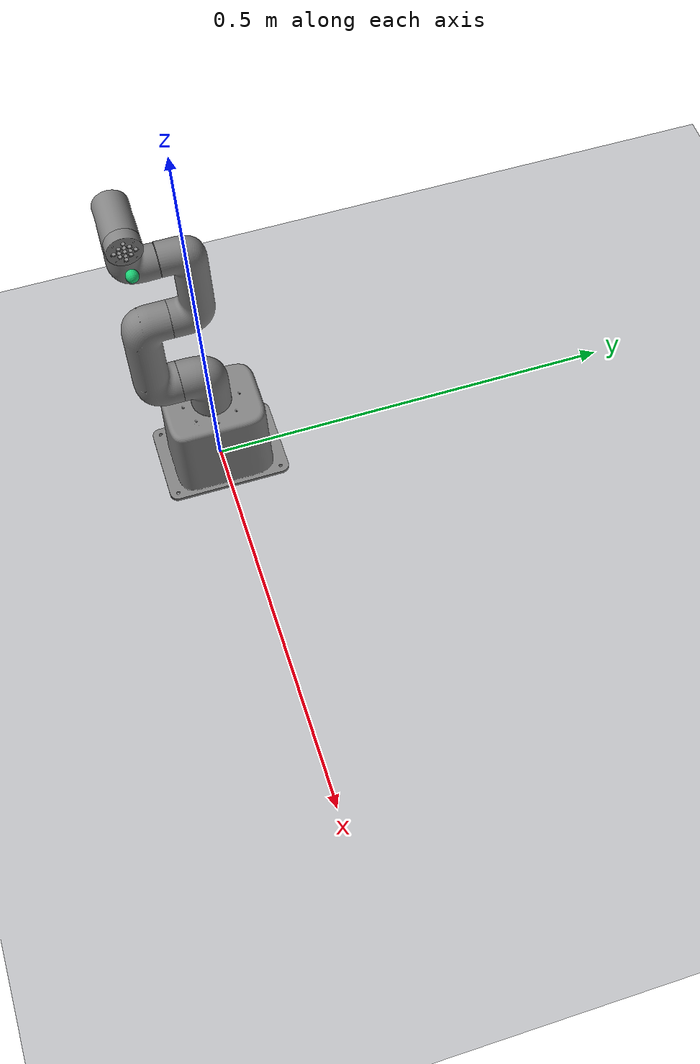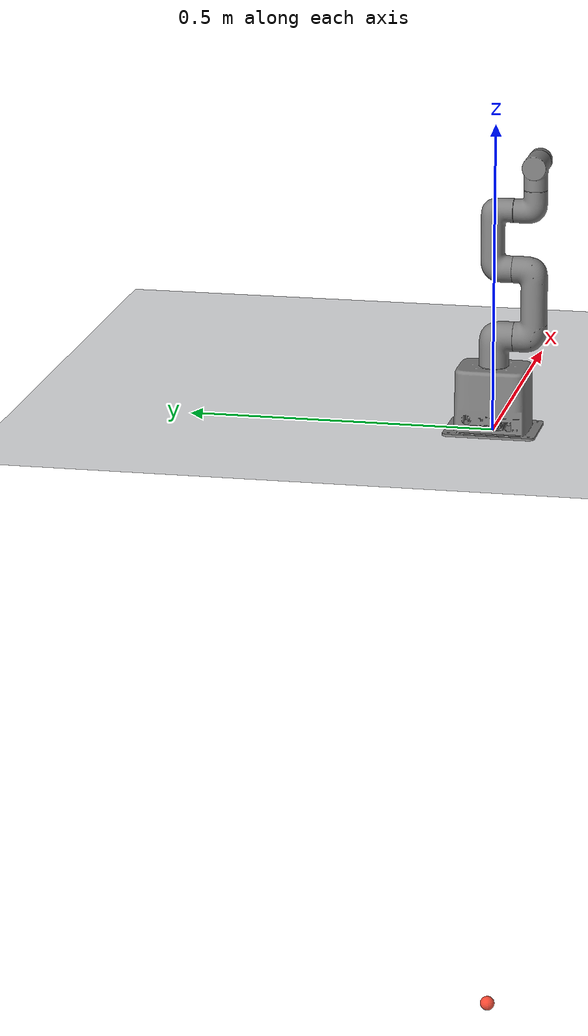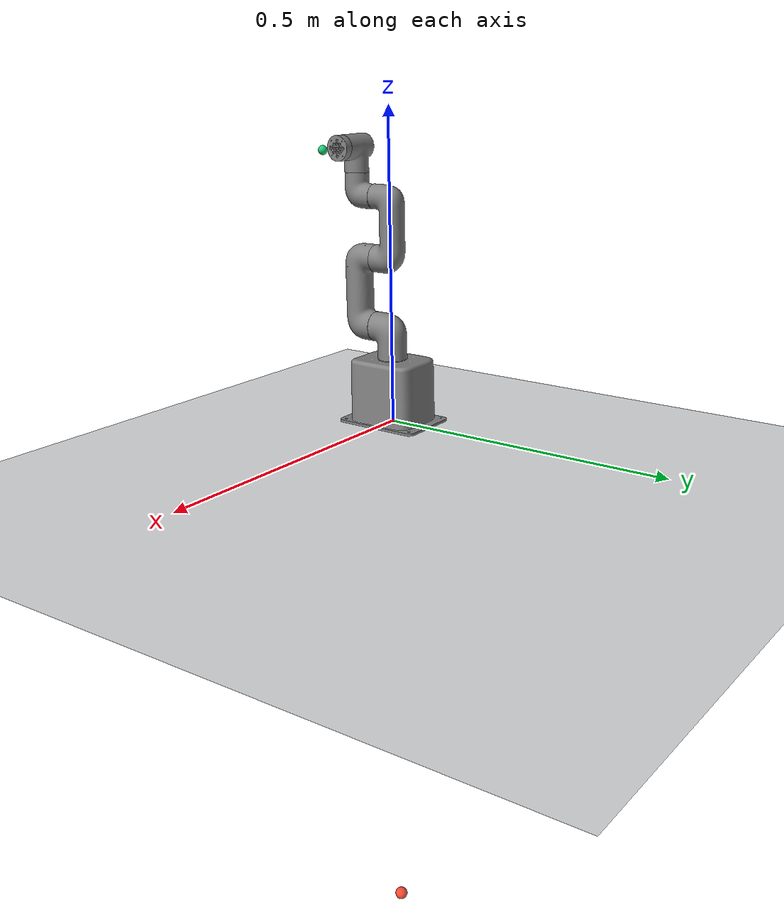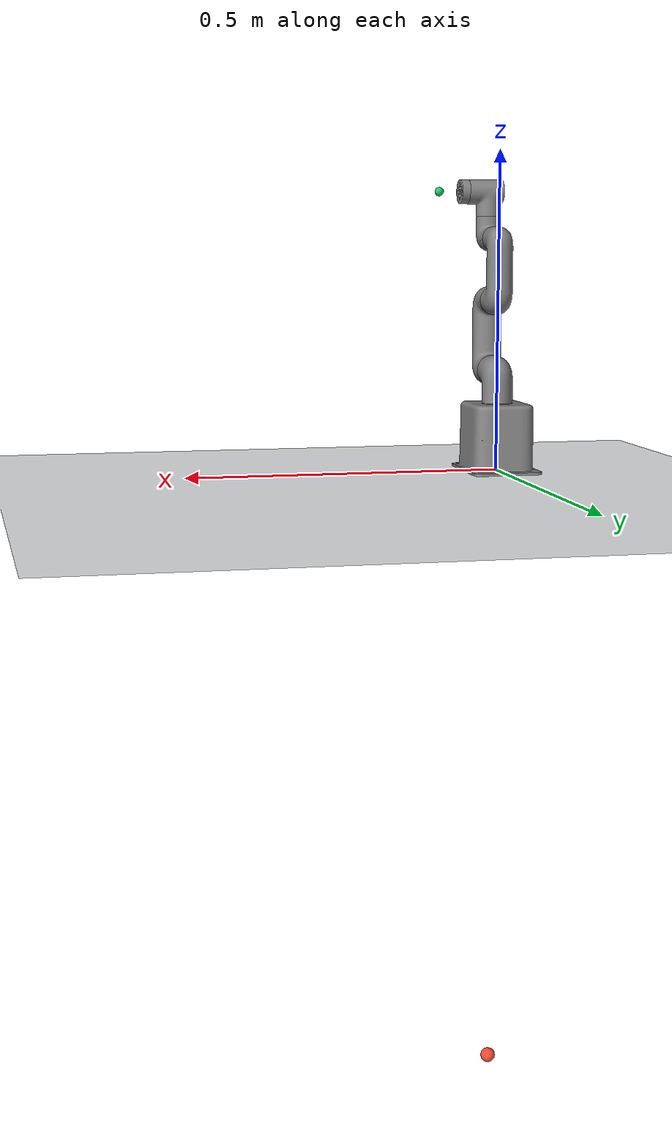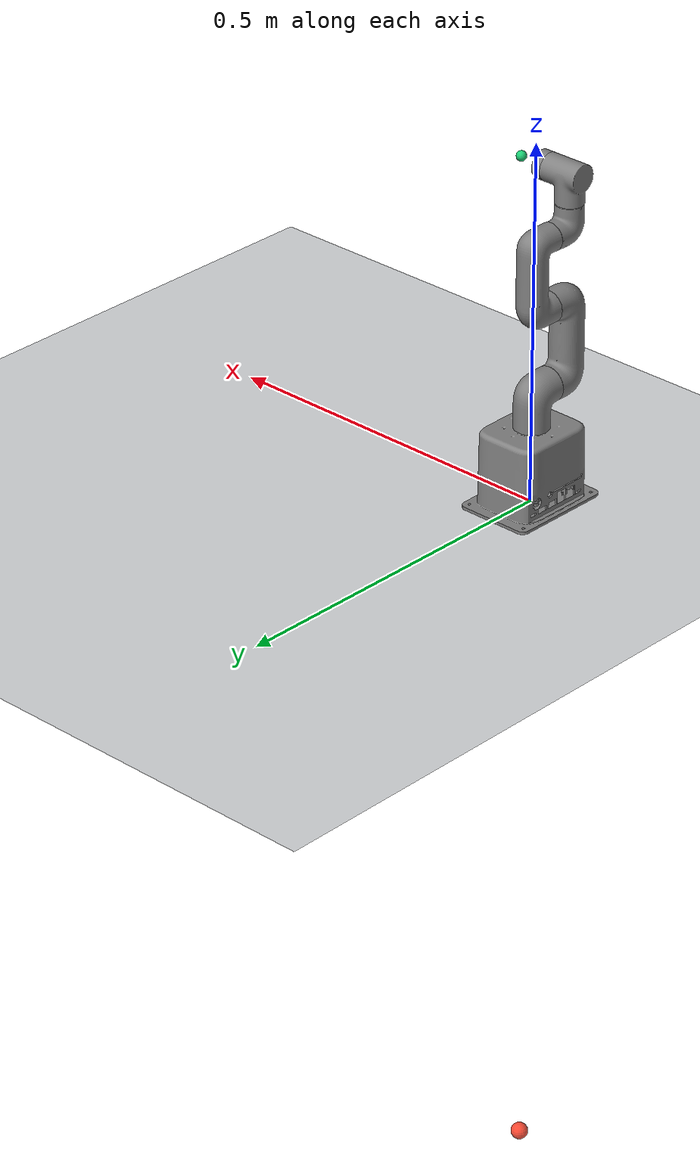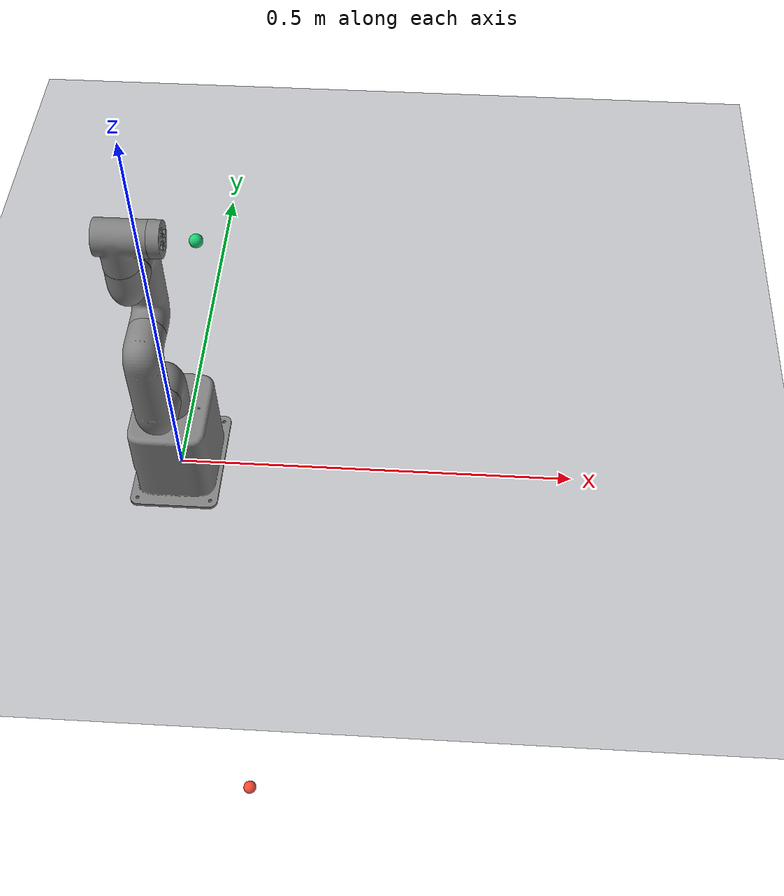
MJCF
<mujoco model="mycobot_280_gamepad_scene">
  <!-- Kinematics/inertials are from Elephant Robotics' downloaded 280 JN model. -->
  <compiler angle="radian" meshdir="upstream/meshes_mujoco"/>
  <option timestep="0.002" gravity="0 0 -9.81" integrator="implicitfast"/>
  <size njmax="500" nconmax="100"/>
  <statistic center="0 0 0.18" extent="0.55"/>

  <visual>
    <global azimuth="135" elevation="-25" offwidth="960" offheight="720"/>
    <headlight ambient="0.35 0.35 0.35" diffuse="0.75 0.75 0.75" specular="0.2 0.2 0.2"/>
    <rgba haze="0.9 0.93 0.97 1"/>
  </visual>

  <default>
    <joint damping="0.2" armature="0.01"/>
    <!-- Upstream duplicates visual and collision meshes; disable self-collision for teleoperation. -->
    <geom contype="0" conaffinity="0"/>
  </default>

  <asset>
    <mesh name="joint1_jet" file="joint1_jet.stl"/>
    <mesh name="joint2" file="joint2.stl"/>
    <mesh name="joint3" file="joint3.stl"/>
    <mesh name="joint4" file="joint4.stl"/>
    <mesh name="joint5" file="joint5.stl"/>
    <mesh name="joint6" file="joint6.stl"/>
    <mesh name="joint7" file="joint7.stl"/>
    <texture name="floor_tex" type="2d" builtin="checker" width="256" height="256"
             rgb1="0.18 0.20 0.23" rgb2="0.28 0.31 0.35"/>
    <material name="floor_mat" texture="floor_tex" texrepeat="4 4" reflectance="0.15"/>
  </asset>

  <worldbody>
    <camera name="viewer" pos="0.43 -0.72 0.44" xyaxes="0.86 0.51 0 -0.22 0.37 0.90"/>
    <light name="key" pos="0 -1.2 1.5" dir="0 1 -1"/>
    <light name="fill" pos="-0.8 0.6 0.9" dir="1 -1 -0.5" diffuse="0.35 0.35 0.35"/>
    <geom name="floor" type="plane" size="0.8 0.8 0.02" material="floor_mat"
          contype="1" conaffinity="1"/>
    <geom quat="0.000796327 0 0 1" type="mesh" contype="0" conaffinity="0"
          group="1" mesh="joint1_jet"/>
    <geom quat="0.000796327 0 0 1" type="mesh" mesh="joint1_jet"/>
    <body name="cartesian_target" mocap="true" pos="0 0 -1">
      <geom name="cartesian_target_marker" type="sphere" size="0.012"
            rgba="1 0.2 0.1 0.85" contype="0" conaffinity="0"/>
    </body>
    <body name="joint2" pos="0 0 0.15756">
      <inertial pos="-4.46252e-07 -0.0048982 -0.0203936"
                quat="0.988685 0.150004 1.75753e-05 -6.19332e-05" mass="0.153266"
                diaginertia="0.00010997 0.000104609 4.89092e-05"/>
      <joint name="joint2_to_joint1" pos="0 0 0" axis="0 0 1" limited="true"
             range="-2.9321 2.9321"/>
      <geom pos="0 0 -0.06096" quat="0.707105 0 0 -0.707108" type="mesh"
            contype="0" conaffinity="0" group="1" mesh="joint2"/>
      <geom pos="0 0 -0.06096" quat="0.707105 0 0 -0.707108" type="mesh" mesh="joint2"/>
      <body name="joint3" pos="0 0 -0.001" quat="0.499998 0.500002 0.5 -0.5">
        <inertial pos="-0.0548658 -3.79418e-06 0.0581352"
                  quat="0.50338 0.49662 0.497294 0.502669" mass="0.4"
                  diaginertia="0.000569683 0.000554829 8.82752e-05"/>
        <joint name="joint3_to_joint2" pos="0 0 0" axis="0 0 1" limited="true"
               range="-2.0943 2.0943"/>
        <geom pos="0 0 0.03256" quat="0.707105 0 -0.707108 0" type="mesh"
              contype="0" conaffinity="0" group="1" mesh="joint3"/>
        <geom pos="0 0 0.03256" quat="0.707105 0 -0.707108 0" type="mesh" mesh="joint3"/>
        <body name="joint4" pos="-0.1104 0 0">
          <inertial pos="-0.0454441 4.51021e-07 0.00478273"
                    quat="0.508392 0.491471 0.491339 0.508508" mass="0.219069"
                    diaginertia="0.000359328 0.000340078 6.35956e-05"/>
          <joint name="joint4_to_joint3" pos="0 0 0" axis="0 0 1" limited="true"
                 range="-2.6179 2.6179"/>
          <geom pos="0 0 0.03056" quat="0.707105 0 -0.707108 0" type="mesh"
                contype="0" conaffinity="0" group="1" mesh="joint4"/>
          <geom pos="0 0 0.03056" quat="0.707105 0 -0.707108 0" type="mesh" mesh="joint4"/>
          <body name="joint5" pos="-0.096 0 0.06462" quat="0.707105 0 0 -0.707108">
            <inertial pos="1.49997e-05 -0.00761485 -0.00688111"
                      quat="0.903244 0.429125 -0.00118023 0.00112811" mass="0.0576212"
                      diaginertia="1.88765e-05 1.81573e-05 1.0565e-05"/>
            <joint name="joint5_to_joint4" pos="0 0 0" axis="0 0 1" limited="true"
                   range="-2.5307 2.5307"/>
            <geom pos="0 0 -0.03356" quat="0.707105 -0.707108 0 0" type="mesh"
                  contype="0" conaffinity="0" group="1" mesh="joint5"/>
            <geom pos="0 0 -0.03356" quat="0.707105 -0.707108 0 0" type="mesh" mesh="joint5"/>
            <body name="joint6" pos="0 -0.07318 0" quat="0.499998 0.5 -0.5 0.500002">
              <inertial pos="-3.34552e-08 0.00487808 -0.00751659"
                        quat="0.395895 0.918296 6.92557e-06 2.44425e-06" mass="0.0904837"
                        diaginertia="4.06947e-05 3.23387e-05 2.57661e-05"/>
              <joint name="joint6_to_joint5" pos="0 0 0" axis="0 0 1" limited="true"
                     range="-2.8797 2.8797"/>
              <geom pos="0 0 -0.038" type="mesh" contype="0" conaffinity="0"
                    group="1" mesh="joint6"/>
              <geom pos="0 0 -0.038" type="mesh" mesh="joint6"/>
              <body name="joint6_flange" pos="0 0.0456 0" quat="0.707105 -0.707108 0 0">
                <inertial pos="-6.68861e-07 -1.54403e-07 -0.00514555"
                          quat="0.276336 0.650875 -0.27633 0.650877" mass="0.0121397"
                          diaginertia="1.94827e-06 1.13494e-06 1.13491e-06"/>
                <joint name="joint7_to_joint6" pos="0 0 0" axis="0 0 1" limited="true"
                       range="-3.14 3.14159"/>
                <geom pos="0 0 -0.012" type="mesh" contype="0" conaffinity="0"
                      group="1" mesh="joint7"/>
                <geom pos="0 0 -0.012" type="mesh" mesh="joint7"/>
                <site name="tcp" pos="0 0 0.035" size="0.007" rgba="0.1 0.8 0.45 1"/>
              </body>
            </body>
          </body>
        </body>
      </body>
    </body>
  </worldbody>

  <actuator>
    <position name="joint1_position" joint="joint2_to_joint1" kp="90" dampratio="1"
              ctrlrange="-2.9321 2.9321" forcerange="-20 20"/>
    <position name="joint2_position" joint="joint3_to_joint2" kp="90" dampratio="1"
              ctrlrange="-2.0943 2.0943" forcerange="-20 20"/>
    <position name="joint3_position" joint="joint4_to_joint3" kp="75" dampratio="1"
              ctrlrange="-2.6179 2.6179" forcerange="-16 16"/>
    <position name="joint4_position" joint="joint5_to_joint4" kp="55" dampratio="1"
              ctrlrange="-2.5307 2.5307" forcerange="-10 10"/>
    <position name="joint5_position" joint="joint6_to_joint5" kp="45" dampratio="1"
              ctrlrange="-2.8797 2.8797" forcerange="-8 8"/>
    <position name="joint6_position" joint="joint7_to_joint6" kp="35" dampratio="1"
              ctrlrange="-3.14 3.14159" forcerange="-6 6"/>
  </actuator>
</mujoco>
